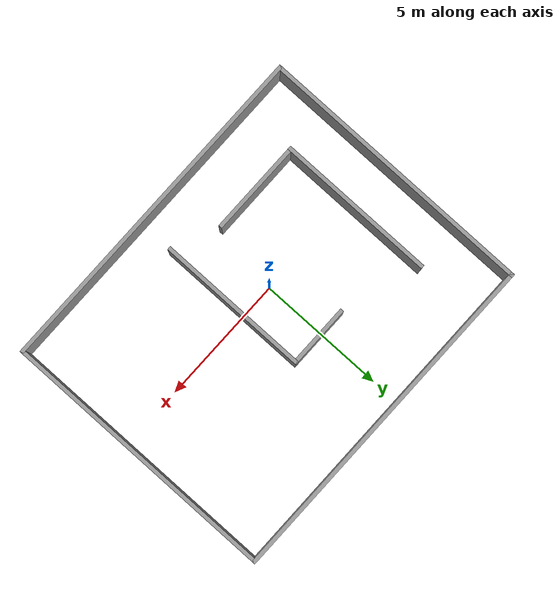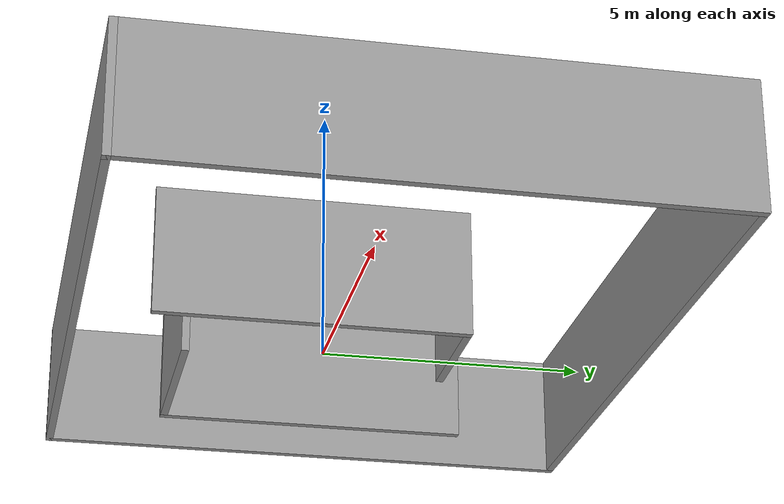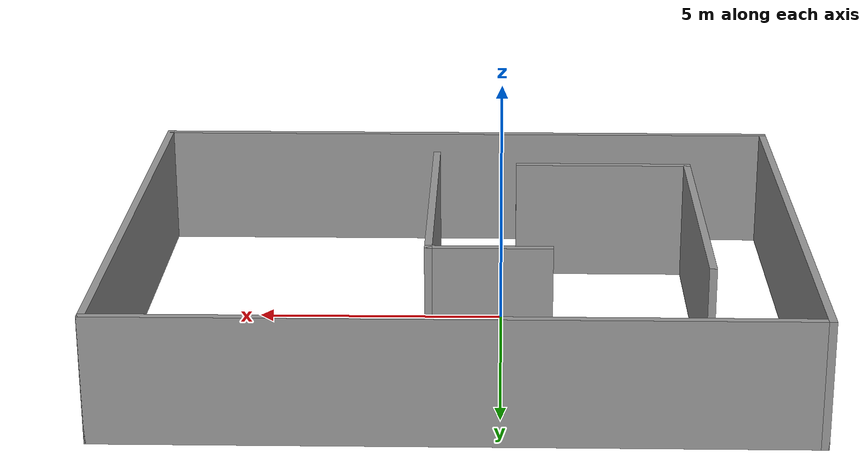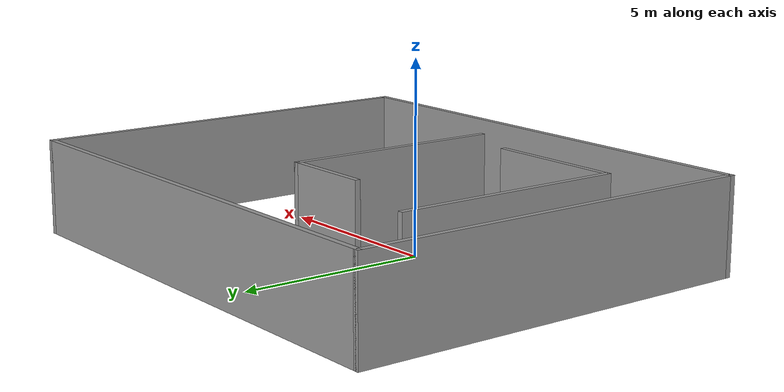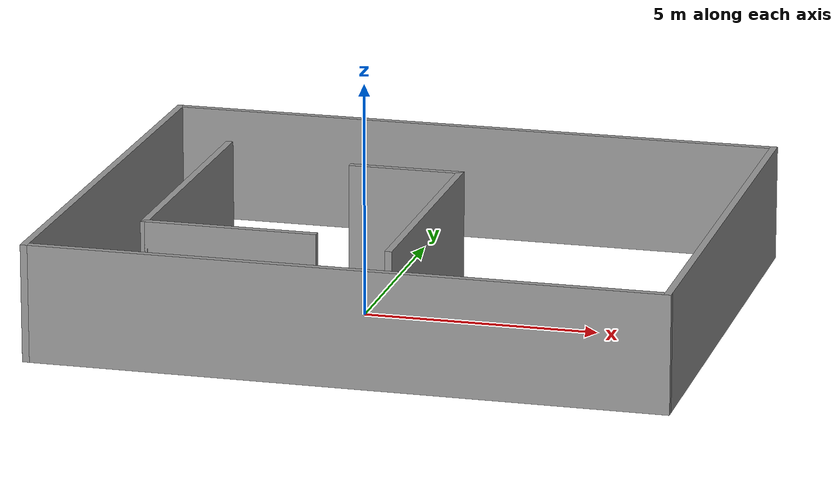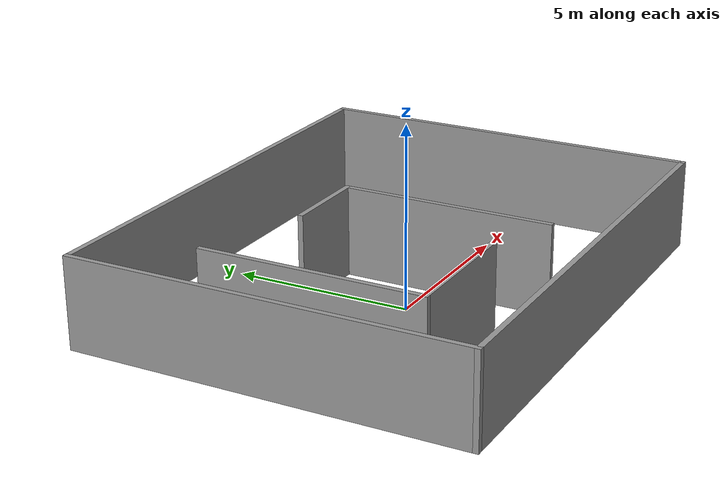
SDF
<?xml version='1.0'?>
<sdf version='1.7'>
  <model name='maze'>
    <pose>0.810131 0.646507 0 0 -0 0</pose>
    <link name='Wall_11'>
      <collision name='Wall_11_Collision'>
        <geometry>
          <box>
            <size>6.25 0.15 2.5</size>
          </box>
        </geometry>
        <pose>0 0 1.25 0 -0 0</pose>
      </collision>
      <visual name='Wall_11_Visual'>
        <pose>0 0 1.25 0 -0 0</pose>
        <geometry>
          <box>
            <size>6.25 0.15 2.5</size>
          </box>
        </geometry>
        <material>
          <script>
            <uri>file://media/materials/scripts/gazebo.material</uri>
            <name>Gazebo/Grey</name>
          </script>
          <ambient>1 1 1 1</ambient>
        </material>
        <meta>
          <layer>0</layer>
        </meta>
      </visual>
      <pose>-4.80372 -0.182583 0 0 -0 -1.5708</pose>
    </link>
    <link name='Wall_12'>
      <collision name='Wall_12_Collision'>
        <geometry>
          <box>
            <size>3.75 0.15 2.5</size>
          </box>
        </geometry>
        <pose>0 0 1.25 0 -0 0</pose>
      </collision>
      <visual name='Wall_12_Visual'>
        <pose>0 0 1.25 0 -0 0</pose>
        <geometry>
          <box>
            <size>3.75 0.15 2.5</size>
          </box>
        </geometry>
        <material>
          <script>
            <uri>file://media/materials/scripts/gazebo.material</uri>
            <name>Gazebo/Grey</name>
          </script>
          <ambient>1 1 1 1</ambient>
        </material>
        <meta>
          <layer>0</layer>
        </meta>
      </visual>
      <pose>-3.00372 -3.23258 0 0 -0 0</pose>
    </link>
    <link name='Wall_14'>
      <collision name='Wall_14_Collision'>
        <geometry>
          <box>
            <size>2.5 0.15 2.5</size>
          </box>
        </geometry>
        <pose>0 0 1.25 0 -0 0</pose>
      </collision>
      <visual name='Wall_14_Visual'>
        <pose>0 0 1.25 0 -0 0</pose>
        <geometry>
          <box>
            <size>2.5 0.15 2.5</size>
          </box>
        </geometry>
        <material>
          <script>
            <uri>file://media/materials/scripts/gazebo.material</uri>
            <name>Gazebo/Grey</name>
          </script>
          <ambient>1 1 1 1</ambient>
        </material>
        <meta>
          <layer>0</layer>
        </meta>
      </visual>
      <pose>-0.569694 1.85794 0 0 -0 0</pose>
    </link>
    <link name='Wall_15'>
      <collision name='Wall_15_Collision'>
        <geometry>
          <box>
            <size>6 0.15 2.5</size>
          </box>
        </geometry>
        <pose>0 0 1.25 0 -0 0</pose>
      </collision>
      <visual name='Wall_15_Visual'>
        <pose>0 0 1.25 0 -0 0</pose>
        <geometry>
          <box>
            <size>6 0.15 2.5</size>
          </box>
        </geometry>
        <material>
          <script>
            <uri>file://media/materials/scripts/gazebo.material</uri>
            <name>Gazebo/Grey</name>
          </script>
          <ambient>1 1 1 1</ambient>
        </material>
        <meta>
          <layer>0</layer>
        </meta>
      </visual>
      <pose>0.605306 -1.06706 0 0 -0 -1.5708</pose>
    </link>
    <link name='Wall_6'>
      <collision name='Wall_6_Collision'>
        <geometry>
          <box>
            <size>11 0.15 2.5</size>
          </box>
        </geometry>
        <pose>0 0 1.25 0 -0 0</pose>
      </collision>
      <visual name='Wall_6_Visual'>
        <pose>0 0 1.25 0 -0 0</pose>
        <geometry>
          <box>
            <size>11 0.15 2.5</size>
          </box>
        </geometry>
        <material>
          <script>
            <uri>file://media/materials/scripts/gazebo.material</uri>
            <name>Gazebo/Grey</name>
          </script>
          <ambient>1 1 1 1</ambient>
        </material>
        <meta>
          <layer>0</layer>
        </meta>
      </visual>
      <pose>-6.675 0 0 0 -0 1.5708</pose>
    </link>
    <link name='Wall_7'>
      <collision name='Wall_7_Collision'>
        <geometry>
          <box>
            <size>13.5 0.15 2.5</size>
          </box>
        </geometry>
        <pose>0 0 1.25 0 -0 0</pose>
      </collision>
      <visual name='Wall_7_Visual'>
        <pose>0 0 1.25 0 -0 0</pose>
        <geometry>
          <box>
            <size>13.5 0.15 2.5</size>
          </box>
        </geometry>
        <material>
          <script>
            <uri>file://media/materials/scripts/gazebo.material</uri>
            <name>Gazebo/Grey</name>
          </script>
          <ambient>1 1 1 1</ambient>
        </material>
        <meta>
          <layer>0</layer>
        </meta>
      </visual>
      <pose>0 5.425 0 0 -0 0</pose>
    </link>
    <link name='Wall_8'>
      <collision name='Wall_8_Collision'>
        <geometry>
          <box>
            <size>11 0.15 2.5</size>
          </box>
        </geometry>
        <pose>0 0 1.25 0 -0 0</pose>
      </collision>
      <visual name='Wall_8_Visual'>
        <pose>0 0 1.25 0 -0 0</pose>
        <geometry>
          <box>
            <size>11 0.15 2.5</size>
          </box>
        </geometry>
        <material>
          <script>
            <uri>file://media/materials/scripts/gazebo.material</uri>
            <name>Gazebo/Grey</name>
          </script>
          <ambient>1 1 1 1</ambient>
        </material>
        <meta>
          <layer>0</layer>
        </meta>
      </visual>
      <pose>6.675 0 0 0 -0 -1.5708</pose>
    </link>
    <link name='Wall_9'>
      <collision name='Wall_9_Collision'>
        <geometry>
          <box>
            <size>13.5 0.15 2.5</size>
          </box>
        </geometry>
        <pose>0 0 1.25 0 -0 0</pose>
      </collision>
      <visual name='Wall_9_Visual'>
        <pose>0 0 1.25 0 -0 0</pose>
        <geometry>
          <box>
            <size>13.5 0.15 2.5</size>
          </box>
        </geometry>
        <material>
          <script>
            <uri>file://media/materials/scripts/gazebo.material</uri>
            <name>Gazebo/Grey</name>
          </script>
          <ambient>1 1 1 1</ambient>
        </material>
        <meta>
          <layer>0</layer>
        </meta>
      </visual>
      <pose>0 -5.425 0 0 -0 3.14159</pose>
    </link>
    <static>1</static>
  </model>
</sdf>
